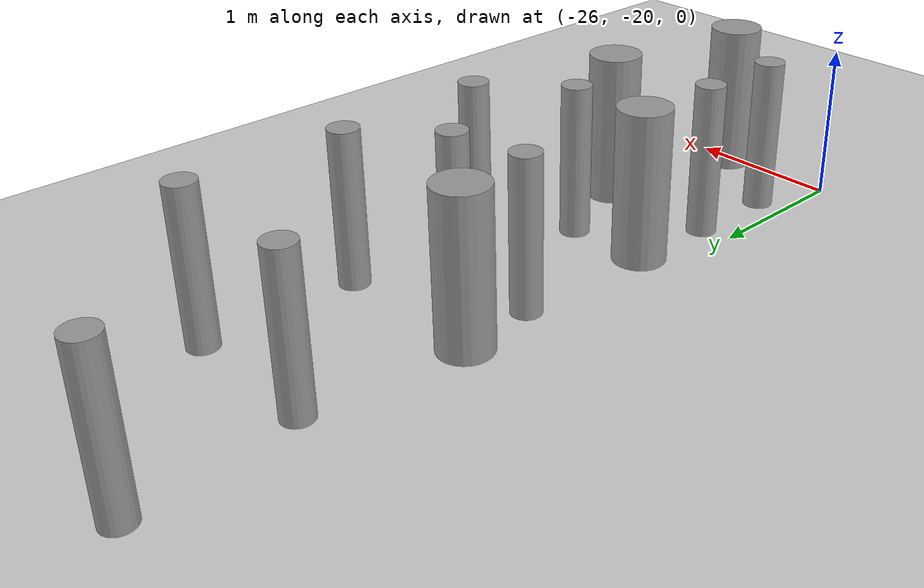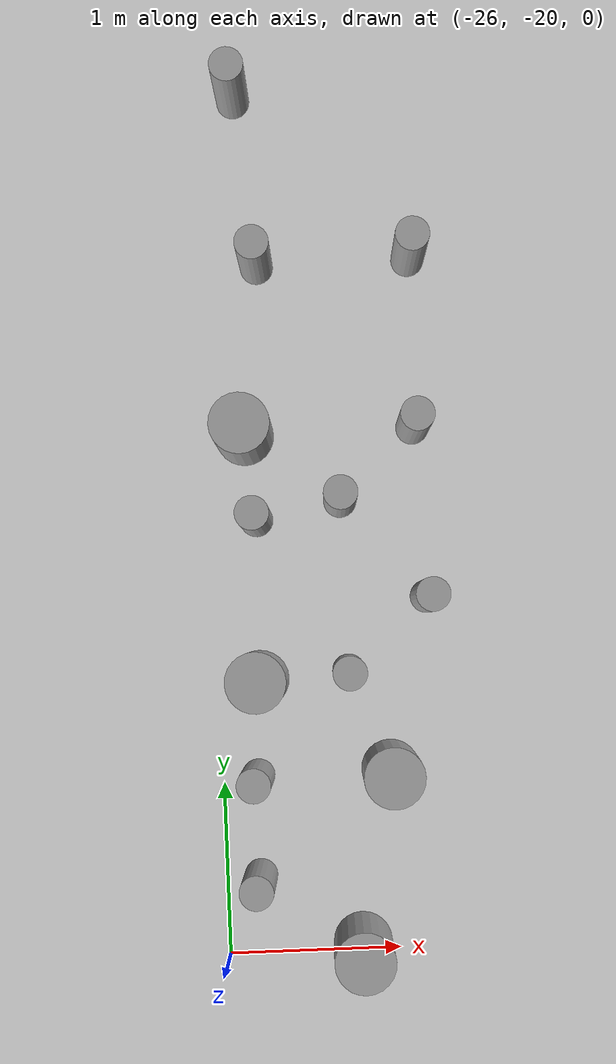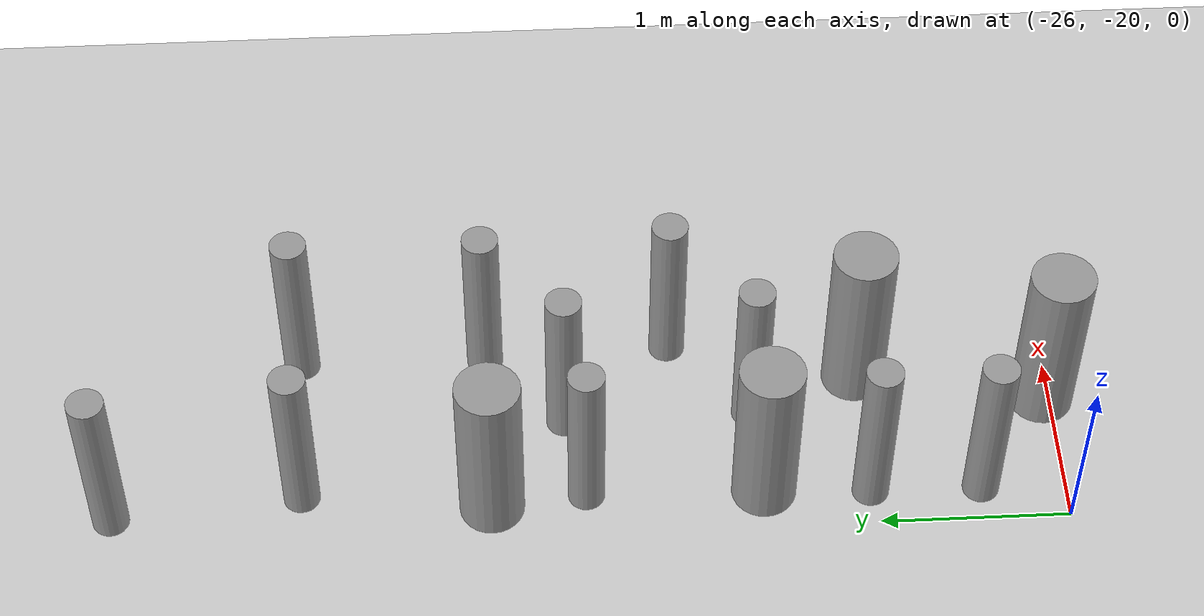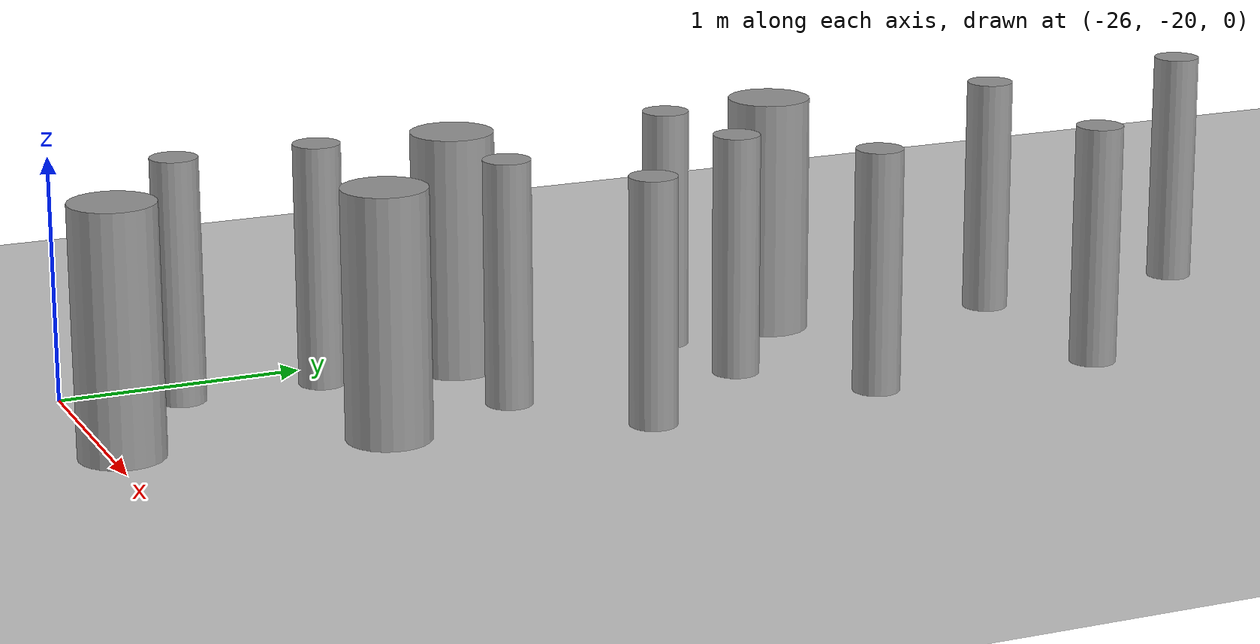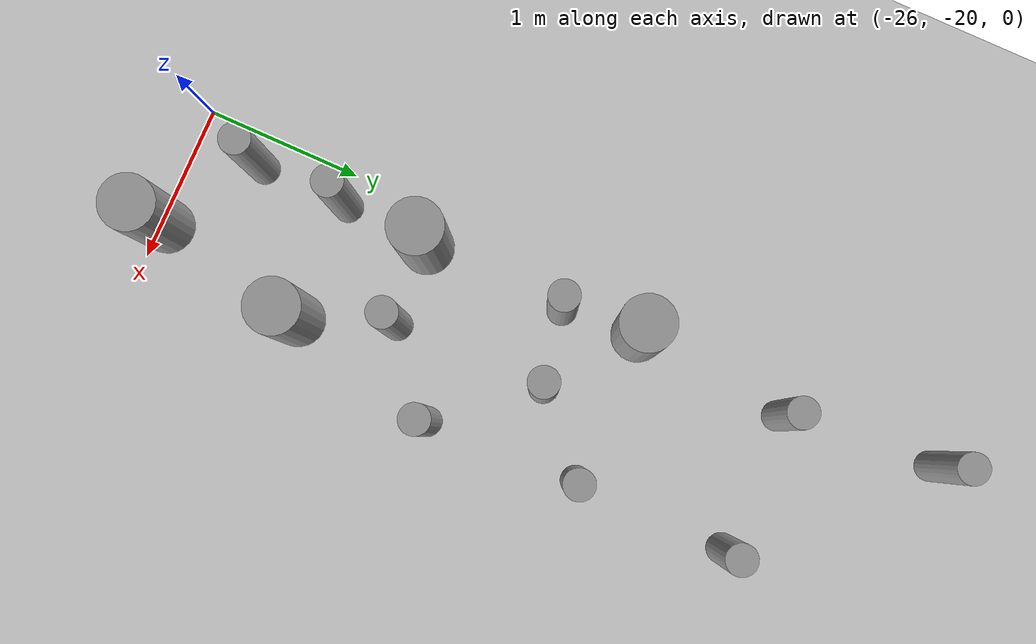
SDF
<sdf version="1.6">
 <world name="default">
  <model name="ground_plane">
   <static>1</static>
   <link name="link">
    <collision name="collision">
     <geometry><plane><normal>0 0 1</normal><size>100 100</size></plane></geometry>
     <surface><friction><ode><mu>100</mu><mu2>50</mu2></ode></friction></surface>
    </collision>
    <visual name="visual">
     <cast_shadows>0</cast_shadows>
     <geometry><plane><normal>0 0 1</normal><size>100 100</size></plane></geometry>
     <material>
      <script><uri>file://media/materials/scripts/gazebo.material</uri><name>Gazebo/Grey</name></script>
     </material>
    </visual>
   </link>
  </model>
  <model name="cyl_wall_clone_clone_1_clone_1_clone_clone_clone_clone_0">
   <link name="link_0">
    <pose>-2.73893 -0.366465 0 0 -0 0</pose>
    <inertial>
     <mass>0.0374993</mass>
     <inertia>
      <ixx>0.00321281</ixx>
      <ixy>0</ixy>
      <ixz>0</ixz>
      <iyy>0.00321281</iyy>
      <iyz>0</iyz>
      <izz>0.000175774</izz>
     </inertia>
    </inertial>
    <visual name="visual">
     <geometry><cylinder><radius>0.0968661</radius><length>1</length></cylinder></geometry>
     <material>
      <lighting>1</lighting>
      <script><uri>file://media/materials/scripts/gazebo.material</uri><name>Gazebo/Grey</name></script>
      <ambient>0.3 0.3 0.3 1</ambient>
      <diffuse>0.7 0.7 0.7 1</diffuse>
      <specular>0.01 0.01 0.01 1</specular>
      <emissive>0 0 0 1</emissive>
     </material>
    </visual>
    <collision name="collision">
     <geometry><cylinder><radius>0.096866</radius><length>1</length></cylinder></geometry>
     <surface>
      <friction>
       <ode><mu>1</mu><mu2>1</mu2><fdir1>0 0 0</fdir1><slip1>0</slip1><slip2>0</slip2></ode>
       <torsional>
        <coefficient>1</coefficient>
        <patch_radius>0</patch_radius>
        <surface_radius>0</surface_radius>
        <use_patch_radius>1</use_patch_radius>
        <ode><slip>0</slip></ode>
       </torsional>
      </friction>
      <bounce><restitution_coefficient>0</restitution_coefficient><threshold>1e+06</threshold></bounce>
      <contact>
       <collide_without_contact>0</collide_without_contact>
       <collide_without_contact_bitmask>1</collide_without_contact_bitmask>
       <collide_bitmask>1</collide_bitmask>
       <ode>
        <soft_cfm>0</soft_cfm>
        <soft_erp>0.2</soft_erp>
        <kp>1e+13</kp>
        <kd>1</kd>
        <max_vel>0.01</max_vel>
        <min_depth>0</min_depth>
       </ode>
       <bullet>
        <split_impulse>1</split_impulse>
        <split_impulse_penetration_threshold>-0.01</split_impulse_penetration_threshold>
        <soft_cfm>0</soft_cfm>
        <soft_erp>0.2</soft_erp>
        <kp>1e+13</kp>
        <kd>1</kd>
       </bullet>
      </contact>
     </surface>
    </collision>
   </link>
   <link name="link_0_clone">
    <pose>-1.73893 0.61877 0 0 -0 0</pose>
    <inertial>
     <mass>0.0374993</mass>
     <inertia>
      <ixx>0.00321281</ixx>
      <ixy>0</ixy>
      <ixz>0</ixz>
      <iyy>0.00321281</iyy>
      <iyz>0</iyz>
      <izz>0.000175774</izz>
     </inertia>
    </inertial>
    <visual name="visual">
     <geometry><cylinder><radius>0.0968661</radius><length>1</length></cylinder></geometry>
     <material>
      <lighting>1</lighting>
      <script><uri>file://media/materials/scripts/gazebo.material</uri><name>Gazebo/Grey</name></script>
      <ambient>0.3 0.3 0.3 1</ambient>
      <diffuse>0.7 0.7 0.7 1</diffuse>
      <specular>0.01 0.01 0.01 1</specular>
      <emissive>0 0 0 1</emissive>
      <shader type="pixel"/>
     </material>
    </visual>
    <collision name="collision">
     <geometry><cylinder><radius>0.096866</radius><length>1</length></cylinder></geometry>
     <surface>
      <friction>
       <ode><mu>1</mu><mu2>1</mu2><fdir1>0 0 0</fdir1><slip1>0</slip1><slip2>0</slip2></ode>
       <torsional>
        <coefficient>1</coefficient>
        <patch_radius>0</patch_radius>
        <surface_radius>0</surface_radius>
        <use_patch_radius>1</use_patch_radius>
        <ode><slip>0</slip></ode>
       </torsional>
      </friction>
      <bounce><restitution_coefficient>0</restitution_coefficient><threshold>1e+06</threshold></bounce>
      <contact>
       <collide_without_contact>0</collide_without_contact>
       <collide_without_contact_bitmask>1</collide_without_contact_bitmask>
       <collide_bitmask>1</collide_bitmask>
       <ode>
        <soft_cfm>0</soft_cfm>
        <soft_erp>0.2</soft_erp>
        <kp>1e+13</kp>
        <kd>1</kd>
        <max_vel>0.01</max_vel>
        <min_depth>0</min_depth>
       </ode>
       <bullet>
        <split_impulse>1</split_impulse>
        <split_impulse_penetration_threshold>-0.01</split_impulse_penetration_threshold>
        <soft_cfm>0</soft_cfm>
        <soft_erp>0.2</soft_erp>
        <kp>1e+13</kp>
        <kd>1</kd>
       </bullet>
      </contact>
     </surface>
    </collision>
   </link>
   <link name="link_0_clone_clone">
    <pose>-0.327073 0.143919 0 0 -0 0</pose>
    <inertial>
     <mass>0.0374993</mass>
     <inertia>
      <ixx>0.00321281</ixx>
      <ixy>0</ixy>
      <ixz>0</ixz>
      <iyy>0.00321281</iyy>
      <iyz>0</iyz>
      <izz>0.000175774</izz>
     </inertia>
    </inertial>
    <visual name="visual">
     <geometry><cylinder><radius>0.0968661</radius><length>1</length></cylinder></geometry>
     <material>
      <lighting>1</lighting>
      <script><uri>file://media/materials/scripts/gazebo.material</uri><name>Gazebo/Grey</name></script>
      <ambient>0.3 0.3 0.3 1</ambient>
      <diffuse>0.7 0.7 0.7 1</diffuse>
      <specular>0.01 0.01 0.01 1</specular>
      <emissive>0 0 0 1</emissive>
      <shader type="pixel"/>
     </material>
    </visual>
    <collision name="collision">
     <geometry><cylinder><radius>0.096866</radius><length>1</length></cylinder></geometry>
     <surface>
      <friction>
       <ode><mu>1</mu><mu2>1</mu2><fdir1>0 0 0</fdir1><slip1>0</slip1><slip2>0</slip2></ode>
       <torsional>
        <coefficient>1</coefficient>
        <patch_radius>0</patch_radius>
        <surface_radius>0</surface_radius>
        <use_patch_radius>1</use_patch_radius>
        <ode><slip>0</slip></ode>
       </torsional>
      </friction>
      <bounce><restitution_coefficient>0</restitution_coefficient><threshold>1e+06</threshold></bounce>
      <contact>
       <collide_without_contact>0</collide_without_contact>
       <collide_without_contact_bitmask>1</collide_without_contact_bitmask>
       <collide_bitmask>1</collide_bitmask>
       <ode>
        <soft_cfm>0</soft_cfm>
        <soft_erp>0.2</soft_erp>
        <kp>1e+13</kp>
        <kd>1</kd>
        <max_vel>0.01</max_vel>
        <min_depth>0</min_depth>
       </ode>
       <bullet>
        <split_impulse>1</split_impulse>
        <split_impulse_penetration_threshold>-0.01</split_impulse_penetration_threshold>
        <soft_cfm>0</soft_cfm>
        <soft_erp>0.2</soft_erp>
        <kp>1e+13</kp>
        <kd>1</kd>
       </bullet>
      </contact>
     </surface>
    </collision>
   </link>
   <link name="link_0_clone_clone_0">
    <pose>1.26107 -0.419359 0 0 -0 0</pose>
    <inertial>
     <mass>0.0374993</mass>
     <inertia>
      <ixx>0.00321281</ixx>
      <ixy>0</ixy>
      <ixz>0</ixz>
      <iyy>0.00321281</iyy>
      <iyz>0</iyz>
      <izz>0.000175774</izz>
     </inertia>
    </inertial>
    <visual name="visual">
     <geometry><cylinder><radius>0.0968661</radius><length>1</length></cylinder></geometry>
     <material>
      <lighting>1</lighting>
      <script><uri>file://media/materials/scripts/gazebo.material</uri><name>Gazebo/Grey</name></script>
      <ambient>0.3 0.3 0.3 1</ambient>
      <diffuse>0.7 0.7 0.7 1</diffuse>
      <specular>0.01 0.01 0.01 1</specular>
      <emissive>0 0 0 1</emissive>
      <shader type="pixel"/>
     </material>
    </visual>
    <collision name="collision">
     <geometry><cylinder><radius>0.096866</radius><length>1</length></cylinder></geometry>
     <surface>
      <friction>
       <ode><mu>1</mu><mu2>1</mu2><fdir1>0 0 0</fdir1><slip1>0</slip1><slip2>0</slip2></ode>
       <torsional>
        <coefficient>1</coefficient>
        <patch_radius>0</patch_radius>
        <surface_radius>0</surface_radius>
        <use_patch_radius>1</use_patch_radius>
        <ode><slip>0</slip></ode>
       </torsional>
      </friction>
      <bounce><restitution_coefficient>0</restitution_coefficient><threshold>1e+06</threshold></bounce>
      <contact>
       <collide_without_contact>0</collide_without_contact>
       <collide_without_contact_bitmask>1</collide_without_contact_bitmask>
       <collide_bitmask>1</collide_bitmask>
       <ode>
        <soft_cfm>0</soft_cfm>
        <soft_erp>0.2</soft_erp>
        <kp>1e+13</kp>
        <kd>1</kd>
        <max_vel>0.01</max_vel>
        <min_depth>0</min_depth>
       </ode>
       <bullet>
        <split_impulse>1</split_impulse>
        <split_impulse_penetration_threshold>-0.01</split_impulse_penetration_threshold>
        <soft_cfm>0</soft_cfm>
        <soft_erp>0.2</soft_erp>
        <kp>1e+13</kp>
        <kd>1</kd>
       </bullet>
      </contact>
     </surface>
    </collision>
   </link>
   <link name="link_0_clone_clone_1">
    <pose>-1.73893 -0.277168 0 0 -0 0</pose>
    <inertial>
     <mass>0.0374993</mass>
     <inertia>
      <ixx>0.00321281</ixx>
      <ixy>0</ixy>
      <ixz>0</ixz>
      <iyy>0.00321281</iyy>
      <iyz>0</iyz>
      <izz>0.000175774</izz>
     </inertia>
    </inertial>
    <visual name="visual">
     <geometry><cylinder><radius>0.0968661</radius><length>1</length></cylinder></geometry>
     <material>
      <lighting>1</lighting>
      <script><uri>file://media/materials/scripts/gazebo.material</uri><name>Gazebo/Grey</name></script>
      <ambient>0.3 0.3 0.3 1</ambient>
      <diffuse>0.7 0.7 0.7 1</diffuse>
      <specular>0.01 0.01 0.01 1</specular>
      <emissive>0 0 0 1</emissive>
      <shader type="pixel"/>
     </material>
    </visual>
    <collision name="collision">
     <geometry><cylinder><radius>0.096866</radius><length>1</length></cylinder></geometry>
     <surface>
      <friction>
       <ode><mu>1</mu><mu2>1</mu2><fdir1>0 0 0</fdir1><slip1>0</slip1><slip2>0</slip2></ode>
       <torsional>
        <coefficient>1</coefficient>
        <patch_radius>0</patch_radius>
        <surface_radius>0</surface_radius>
        <use_patch_radius>1</use_patch_radius>
        <ode><slip>0</slip></ode>
       </torsional>
      </friction>
      <bounce><restitution_coefficient>0</restitution_coefficient><threshold>1e+06</threshold></bounce>
      <contact>
       <collide_without_contact>0</collide_without_contact>
       <collide_without_contact_bitmask>1</collide_without_contact_bitmask>
       <collide_bitmask>1</collide_bitmask>
       <ode>
        <soft_cfm>0</soft_cfm>
        <soft_erp>0.2</soft_erp>
        <kp>1e+13</kp>
        <kd>1</kd>
        <max_vel>0.01</max_vel>
        <min_depth>0</min_depth>
       </ode>
       <bullet>
        <split_impulse>1</split_impulse>
        <split_impulse_penetration_threshold>-0.01</split_impulse_penetration_threshold>
        <soft_cfm>0</soft_cfm>
        <soft_erp>0.2</soft_erp>
        <kp>1e+13</kp>
        <kd>1</kd>
       </bullet>
      </contact>
     </surface>
    </collision>
   </link>
   <link name="link_0_clone_clone_2">
    <pose>-0.738934 0.593961 0 0 -0 0</pose>
    <inertial>
     <mass>0.0374993</mass>
     <inertia>
      <ixx>0.00321281</ixx>
      <ixy>0</ixy>
      <ixz>0</ixz>
      <iyy>0.00321281</iyy>
      <iyz>0</iyz>
      <izz>0.000175774</izz>
     </inertia>
    </inertial>
    <visual name="visual">
     <geometry><cylinder><radius>0.0968661</radius><length>1</length></cylinder></geometry>
     <material>
      <lighting>1</lighting>
      <script><uri>file://media/materials/scripts/gazebo.material</uri><name>Gazebo/Grey</name></script>
      <ambient>0.3 0.3 0.3 1</ambient>
      <diffuse>0.7 0.7 0.7 1</diffuse>
      <specular>0.01 0.01 0.01 1</specular>
      <emissive>0 0 0 1</emissive>
      <shader type="pixel"/>
     </material>
    </visual>
    <collision name="collision">
     <geometry><cylinder><radius>0.096866</radius><length>1</length></cylinder></geometry>
     <surface>
      <friction>
       <ode><mu>1</mu><mu2>1</mu2><fdir1>0 0 0</fdir1><slip1>0</slip1><slip2>0</slip2></ode>
       <torsional>
        <coefficient>1</coefficient>
        <patch_radius>0</patch_radius>
        <surface_radius>0</surface_radius>
        <use_patch_radius>1</use_patch_radius>
        <ode><slip>0</slip></ode>
       </torsional>
      </friction>
      <bounce><restitution_coefficient>0</restitution_coefficient><threshold>1e+06</threshold></bounce>
      <contact>
       <collide_without_contact>0</collide_without_contact>
       <collide_without_contact_bitmask>1</collide_without_contact_bitmask>
       <collide_bitmask>1</collide_bitmask>
       <ode>
        <soft_cfm>0</soft_cfm>
        <soft_erp>0.2</soft_erp>
        <kp>1e+13</kp>
        <kd>1</kd>
        <max_vel>0.01</max_vel>
        <min_depth>0</min_depth>
       </ode>
       <bullet>
        <split_impulse>1</split_impulse>
        <split_impulse_penetration_threshold>-0.01</split_impulse_penetration_threshold>
        <soft_cfm>0</soft_cfm>
        <soft_erp>0.2</soft_erp>
        <kp>1e+13</kp>
        <kd>1</kd>
       </bullet>
      </contact>
     </surface>
    </collision>
   </link>
   <link name="link_0_clone_clone_3">
    <pose>0.261066 0.624849 0 0 -0 0</pose>
    <inertial>
     <mass>0.0374993</mass>
     <inertia>
      <ixx>0.00321281</ixx>
      <ixy>0</ixy>
      <ixz>0</ixz>
      <iyy>0.00321281</iyy>
      <iyz>0</iyz>
      <izz>0.000175774</izz>
     </inertia>
    </inertial>
    <visual name="visual">
     <geometry><cylinder><radius>0.0968661</radius><length>1</length></cylinder></geometry>
     <material>
      <lighting>1</lighting>
      <script><uri>file://media/materials/scripts/gazebo.material</uri><name>Gazebo/Grey</name></script>
      <ambient>0.3 0.3 0.3 1</ambient>
      <diffuse>0.7 0.7 0.7 1</diffuse>
      <specular>0.01 0.01 0.01 1</specular>
      <emissive>0 0 0 1</emissive>
      <shader type="pixel"/>
     </material>
    </visual>
    <collision name="collision">
     <geometry><cylinder><radius>0.096866</radius><length>1</length></cylinder></geometry>
     <surface>
      <friction>
       <ode><mu>1</mu><mu2>1</mu2><fdir1>0 0 0</fdir1><slip1>0</slip1><slip2>0</slip2></ode>
       <torsional>
        <coefficient>1</coefficient>
        <patch_radius>0</patch_radius>
        <surface_radius>0</surface_radius>
        <use_patch_radius>1</use_patch_radius>
        <ode><slip>0</slip></ode>
       </torsional>
      </friction>
      <bounce><restitution_coefficient>0</restitution_coefficient><threshold>1e+06</threshold></bounce>
      <contact>
       <collide_without_contact>0</collide_without_contact>
       <collide_without_contact_bitmask>1</collide_without_contact_bitmask>
       <collide_bitmask>1</collide_bitmask>
       <ode>
        <soft_cfm>0</soft_cfm>
        <soft_erp>0.2</soft_erp>
        <kp>1e+13</kp>
        <kd>1</kd>
        <max_vel>0.01</max_vel>
        <min_depth>0</min_depth>
       </ode>
       <bullet>
        <split_impulse>1</split_impulse>
        <split_impulse_penetration_threshold>-0.01</split_impulse_penetration_threshold>
        <soft_cfm>0</soft_cfm>
        <soft_erp>0.2</soft_erp>
        <kp>1e+13</kp>
        <kd>1</kd>
       </bullet>
      </contact>
     </surface>
    </collision>
   </link>
   <link name="link_0_clone_clone_4">
    <pose>-0.239049 -0.353105 0 0 -0 0</pose>
    <inertial>
     <mass>0.0374993</mass>
     <inertia>
      <ixx>0.00321281</ixx>
      <ixy>0</ixy>
      <ixz>0</ixz>
      <iyy>0.00321281</iyy>
      <iyz>0</iyz>
      <izz>0.000175774</izz>
     </inertia>
    </inertial>
    <visual name="visual">
     <geometry><cylinder><radius>0.0968661</radius><length>1</length></cylinder></geometry>
     <material>
      <lighting>1</lighting>
      <script><uri>file://media/materials/scripts/gazebo.material</uri><name>Gazebo/Grey</name></script>
      <ambient>0.3 0.3 0.3 1</ambient>
      <diffuse>0.7 0.7 0.7 1</diffuse>
      <specular>0.01 0.01 0.01 1</specular>
      <emissive>0 0 0 1</emissive>
      <shader type="pixel"/>
     </material>
    </visual>
    <collision name="collision">
     <geometry><cylinder><radius>0.096866</radius><length>1</length></cylinder></geometry>
     <surface>
      <friction>
       <ode><mu>1</mu><mu2>1</mu2><fdir1>0 0 0</fdir1><slip1>0</slip1><slip2>0</slip2></ode>
       <torsional>
        <coefficient>1</coefficient>
        <patch_radius>0</patch_radius>
        <surface_radius>0</surface_radius>
        <use_patch_radius>1</use_patch_radius>
        <ode><slip>0</slip></ode>
       </torsional>
      </friction>
      <bounce><restitution_coefficient>0</restitution_coefficient><threshold>1e+06</threshold></bounce>
      <contact>
       <collide_without_contact>0</collide_without_contact>
       <collide_without_contact_bitmask>1</collide_without_contact_bitmask>
       <collide_bitmask>1</collide_bitmask>
       <ode>
        <soft_cfm>0</soft_cfm>
        <soft_erp>0.2</soft_erp>
        <kp>1e+13</kp>
        <kd>1</kd>
        <max_vel>0.01</max_vel>
        <min_depth>0</min_depth>
       </ode>
       <bullet>
        <split_impulse>1</split_impulse>
        <split_impulse_penetration_threshold>-0.01</split_impulse_penetration_threshold>
        <soft_cfm>0</soft_cfm>
        <soft_erp>0.2</soft_erp>
        <kp>1e+13</kp>
        <kd>1</kd>
       </bullet>
      </contact>
     </surface>
    </collision>
   </link>
   <link name="link_0_clone_clone_5">
    <pose>0.672792 0.143919 0 0 -0 0</pose>
    <inertial>
     <mass>0.0374993</mass>
     <inertia>
      <ixx>0.00321281</ixx>
      <ixy>0</ixy>
      <ixz>0</ixz>
      <iyy>0.00321281</iyy>
      <iyz>0</iyz>
      <izz>0.000175774</izz>
     </inertia>
    </inertial>
    <visual name="visual">
     <geometry><cylinder><radius>0.0968661</radius><length>1</length></cylinder></geometry>
     <material>
      <lighting>1</lighting>
      <script><uri>file://media/materials/scripts/gazebo.material</uri><name>Gazebo/Grey</name></script>
      <ambient>0.3 0.3 0.3 1</ambient>
      <diffuse>0.7 0.7 0.7 1</diffuse>
      <specular>0.01 0.01 0.01 1</specular>
      <emissive>0 0 0 1</emissive>
      <shader type="pixel"/>
     </material>
    </visual>
    <collision name="collision">
     <geometry><cylinder><radius>0.096866</radius><length>1</length></cylinder></geometry>
     <surface>
      <friction>
       <ode><mu>1</mu><mu2>1</mu2><fdir1>0 0 0</fdir1><slip1>0</slip1><slip2>0</slip2></ode>
       <torsional>
        <coefficient>1</coefficient>
        <patch_radius>0</patch_radius>
        <surface_radius>0</surface_radius>
        <use_patch_radius>1</use_patch_radius>
        <ode><slip>0</slip></ode>
       </torsional>
      </friction>
      <bounce><restitution_coefficient>0</restitution_coefficient><threshold>1e+06</threshold></bounce>
      <contact>
       <collide_without_contact>0</collide_without_contact>
       <collide_without_contact_bitmask>1</collide_without_contact_bitmask>
       <collide_bitmask>1</collide_bitmask>
       <ode>
        <soft_cfm>0</soft_cfm>
        <soft_erp>0.2</soft_erp>
        <kp>1e+13</kp>
        <kd>1</kd>
        <max_vel>0.01</max_vel>
        <min_depth>0</min_depth>
       </ode>
       <bullet>
        <split_impulse>1</split_impulse>
        <split_impulse_penetration_threshold>-0.01</split_impulse_penetration_threshold>
        <soft_cfm>0</soft_cfm>
        <soft_erp>0.2</soft_erp>
        <kp>1e+13</kp>
        <kd>1</kd>
       </bullet>
      </contact>
     </surface>
    </collision>
   </link>
   <link name="link_0_clone_clone_6">
    <pose>1.84596 -0.433423 0 0 -0 0</pose>
    <inertial>
     <mass>0.0374993</mass>
     <inertia>
      <ixx>0.00321281</ixx>
      <ixy>0</ixy>
      <ixz>0</ixz>
      <iyy>0.00321281</iyy>
      <iyz>0</iyz>
      <izz>0.000175774</izz>
     </inertia>
    </inertial>
    <visual name="visual">
     <geometry><cylinder><radius>0.0968661</radius><length>1</length></cylinder></geometry>
     <material>
      <lighting>1</lighting>
      <script><uri>file://media/materials/scripts/gazebo.material</uri><name>Gazebo/Grey</name></script>
      <ambient>0.3 0.3 0.3 1</ambient>
      <diffuse>0.7 0.7 0.7 1</diffuse>
      <specular>0.01 0.01 0.01 1</specular>
      <emissive>0 0 0 1</emissive>
      <shader type="pixel"/>
     </material>
    </visual>
    <collision name="collision">
     <geometry><cylinder><radius>0.096866</radius><length>1</length></cylinder></geometry>
     <surface>
      <friction>
       <ode><mu>1</mu><mu2>1</mu2><fdir1>0 0 0</fdir1><slip1>0</slip1><slip2>0</slip2></ode>
       <torsional>
        <coefficient>1</coefficient>
        <patch_radius>0</patch_radius>
        <surface_radius>0</surface_radius>
        <use_patch_radius>1</use_patch_radius>
        <ode><slip>0</slip></ode>
       </torsional>
      </friction>
      <bounce><restitution_coefficient>0</restitution_coefficient><threshold>1e+06</threshold></bounce>
      <contact>
       <collide_without_contact>0</collide_without_contact>
       <collide_without_contact_bitmask>1</collide_without_contact_bitmask>
       <collide_bitmask>1</collide_bitmask>
       <ode>
        <soft_cfm>0</soft_cfm>
        <soft_erp>0.2</soft_erp>
        <kp>1e+13</kp>
        <kd>1</kd>
        <max_vel>0.01</max_vel>
        <min_depth>0</min_depth>
       </ode>
       <bullet>
        <split_impulse>1</split_impulse>
        <split_impulse_penetration_threshold>-0.01</split_impulse_penetration_threshold>
        <soft_cfm>0</soft_cfm>
        <soft_erp>0.2</soft_erp>
        <kp>1e+13</kp>
        <kd>1</kd>
       </bullet>
      </contact>
     </surface>
    </collision>
   </link>
   <link name="link_1">
    <pose>-0.738934 -0.397931 0 0 -0 0</pose>
    <inertial>
     <mass>0.117398</mass>
     <inertia>
      <ixx>0.0106445</ixx>
      <ixy>0</ixy>
      <ixz>0</ixz>
      <iyy>0.0106445</iyy>
      <iyz>0</iyz>
      <izz>0.00172278</izz>
     </inertia>
    </inertial>
    <visual name="visual">
     <geometry><cylinder><radius>0.171317</radius><length>1</length></cylinder></geometry>
     <material>
      <lighting>1</lighting>
      <script><uri>file://media/materials/scripts/gazebo.material</uri><name>Gazebo/Grey</name></script>
      <ambient>0.3 0.3 0.3 1</ambient>
      <diffuse>0.7 0.7 0.7 1</diffuse>
      <specular>0.01 0.01 0.01 1</specular>
      <emissive>0 0 0 1</emissive>
     </material>
    </visual>
    <collision name="collision">
     <geometry><cylinder><radius>0.171317</radius><length>1</length></cylinder></geometry>
     <surface>
      <friction>
       <ode><mu>1</mu><mu2>1</mu2><fdir1>0 0 0</fdir1><slip1>0</slip1><slip2>0</slip2></ode>
       <torsional>
        <coefficient>1</coefficient>
        <patch_radius>0</patch_radius>
        <surface_radius>0</surface_radius>
        <use_patch_radius>1</use_patch_radius>
        <ode><slip>0</slip></ode>
       </torsional>
      </friction>
      <bounce><restitution_coefficient>0</restitution_coefficient><threshold>1e+06</threshold></bounce>
      <contact>
       <collide_without_contact>0</collide_without_contact>
       <collide_without_contact_bitmask>1</collide_without_contact_bitmask>
       <collide_bitmask>1</collide_bitmask>
       <ode>
        <soft_cfm>0</soft_cfm>
        <soft_erp>0.2</soft_erp>
        <kp>1e+13</kp>
        <kd>1</kd>
        <max_vel>0.01</max_vel>
        <min_depth>0</min_depth>
       </ode>
       <bullet>
        <split_impulse>1</split_impulse>
        <split_impulse_penetration_threshold>-0.01</split_impulse_penetration_threshold>
        <soft_cfm>0</soft_cfm>
        <soft_erp>0.2</soft_erp>
        <kp>1e+13</kp>
        <kd>1</kd>
       </bullet>
      </contact>
     </surface>
    </collision>
   </link>
   <link name="link_1_clone">
    <pose>0.697784 -0.380861 0 0 -0 0</pose>
    <inertial>
     <mass>0.117398</mass>
     <inertia>
      <ixx>0.0106445</ixx>
      <ixy>0</ixy>
      <ixz>0</ixz>
      <iyy>0.0106445</iyy>
      <iyz>0</iyz>
      <izz>0.00172278</izz>
     </inertia>
    </inertial>
    <visual name="visual">
     <geometry><cylinder><radius>0.171317</radius><length>1</length></cylinder></geometry>
     <material>
      <lighting>1</lighting>
      <script><uri>file://media/materials/scripts/gazebo.material</uri><name>Gazebo/Grey</name></script>
      <ambient>0.3 0.3 0.3 1</ambient>
      <diffuse>0.7 0.7 0.7 1</diffuse>
      <specular>0.01 0.01 0.01 1</specular>
      <emissive>0 0 0 1</emissive>
      <shader type="pixel"/>
     </material>
    </visual>
    <collision name="collision">
     <geometry><cylinder><radius>0.171317</radius><length>1</length></cylinder></geometry>
     <surface>
      <friction>
       <ode><mu>1</mu><mu2>1</mu2><fdir1>0 0 0</fdir1><slip1>0</slip1><slip2>0</slip2></ode>
       <torsional>
        <coefficient>1</coefficient>
        <patch_radius>0</patch_radius>
        <surface_radius>0</surface_radius>
        <use_patch_radius>1</use_patch_radius>
        <ode><slip>0</slip></ode>
       </torsional>
      </friction>
      <bounce><restitution_coefficient>0</restitution_coefficient><threshold>1e+06</threshold></bounce>
      <contact>
       <collide_without_contact>0</collide_without_contact>
       <collide_without_contact_bitmask>1</collide_without_contact_bitmask>
       <collide_bitmask>1</collide_bitmask>
       <ode>
        <soft_cfm>0</soft_cfm>
        <soft_erp>0.2</soft_erp>
        <kp>1e+13</kp>
        <kd>1</kd>
        <max_vel>0.01</max_vel>
        <min_depth>0</min_depth>
       </ode>
       <bullet>
        <split_impulse>1</split_impulse>
        <split_impulse_penetration_threshold>-0.01</split_impulse_penetration_threshold>
        <soft_cfm>0</soft_cfm>
        <soft_erp>0.2</soft_erp>
        <kp>1e+13</kp>
        <kd>1</kd>
       </bullet>
      </contact>
     </surface>
    </collision>
   </link>
   <link name="link_1_clone_0">
    <pose>1.26107 0.358974 0 0 -0 0</pose>
    <inertial>
     <mass>0.117398</mass>
     <inertia>
      <ixx>0.0106445</ixx>
      <ixy>0</ixy>
      <ixz>0</ixz>
      <iyy>0.0106445</iyy>
      <iyz>0</iyz>
      <izz>0.00172278</izz>
     </inertia>
    </inertial>
    <visual name="visual">
     <geometry><cylinder><radius>0.171317</radius><length>1</length></cylinder></geometry>
     <material>
      <lighting>1</lighting>
      <script><uri>file://media/materials/scripts/gazebo.material</uri><name>Gazebo/Grey</name></script>
      <ambient>0.3 0.3 0.3 1</ambient>
      <diffuse>0.7 0.7 0.7 1</diffuse>
      <specular>0.01 0.01 0.01 1</specular>
      <emissive>0 0 0 1</emissive>
      <shader type="pixel"/>
     </material>
    </visual>
    <collision name="collision">
     <geometry><cylinder><radius>0.171317</radius><length>1</length></cylinder></geometry>
     <surface>
      <friction>
       <ode><mu>1</mu><mu2>1</mu2><fdir1>0 0 0</fdir1><slip1>0</slip1><slip2>0</slip2></ode>
       <torsional>
        <coefficient>1</coefficient>
        <patch_radius>0</patch_radius>
        <surface_radius>0</surface_radius>
        <use_patch_radius>1</use_patch_radius>
        <ode><slip>0</slip></ode>
       </torsional>
      </friction>
      <bounce><restitution_coefficient>0</restitution_coefficient><threshold>1e+06</threshold></bounce>
      <contact>
       <collide_without_contact>0</collide_without_contact>
       <collide_without_contact_bitmask>1</collide_without_contact_bitmask>
       <collide_bitmask>1</collide_bitmask>
       <ode>
        <soft_cfm>0</soft_cfm>
        <soft_erp>0.2</soft_erp>
        <kp>1e+13</kp>
        <kd>1</kd>
        <max_vel>0.01</max_vel>
        <min_depth>0</min_depth>
       </ode>
       <bullet>
        <split_impulse>1</split_impulse>
        <split_impulse_penetration_threshold>-0.01</split_impulse_penetration_threshold>
        <soft_cfm>0</soft_cfm>
        <soft_erp>0.2</soft_erp>
        <kp>1e+13</kp>
        <kd>1</kd>
       </bullet>
      </contact>
     </surface>
    </collision>
   </link>
   <link name="link_1_clone_1">
    <pose>2.26107 0.143919 0 0 -0 0</pose>
    <inertial>
     <mass>0.117398</mass>
     <inertia>
      <ixx>0.0106445</ixx>
      <ixy>0</ixy>
      <ixz>0</ixz>
      <iyy>0.0106445</iyy>
      <iyz>0</iyz>
      <izz>0.00172278</izz>
     </inertia>
    </inertial>
    <visual name="visual">
     <geometry><cylinder><radius>0.171317</radius><length>1</length></cylinder></geometry>
     <material>
      <lighting>1</lighting>
      <script><uri>file://media/materials/scripts/gazebo.material</uri><name>Gazebo/Grey</name></script>
      <ambient>0.3 0.3 0.3 1</ambient>
      <diffuse>0.7 0.7 0.7 1</diffuse>
      <specular>0.01 0.01 0.01 1</specular>
      <emissive>0 0 0 1</emissive>
      <shader type="pixel"/>
     </material>
    </visual>
    <collision name="collision">
     <geometry><cylinder><radius>0.171317</radius><length>1</length></cylinder></geometry>
     <surface>
      <friction>
       <ode><mu>1</mu><mu2>1</mu2><fdir1>0 0 0</fdir1><slip1>0</slip1><slip2>0</slip2></ode>
       <torsional>
        <coefficient>1</coefficient>
        <patch_radius>0</patch_radius>
        <surface_radius>0</surface_radius>
        <use_patch_radius>1</use_patch_radius>
        <ode><slip>0</slip></ode>
       </torsional>
      </friction>
      <bounce><restitution_coefficient>0</restitution_coefficient><threshold>1e+06</threshold></bounce>
      <contact>
       <collide_without_contact>0</collide_without_contact>
       <collide_without_contact_bitmask>1</collide_without_contact_bitmask>
       <collide_bitmask>1</collide_bitmask>
       <ode>
        <soft_cfm>0</soft_cfm>
        <soft_erp>0.2</soft_erp>
        <kp>1e+13</kp>
        <kd>1</kd>
        <max_vel>0.01</max_vel>
        <min_depth>0</min_depth>
       </ode>
       <bullet>
        <split_impulse>1</split_impulse>
        <split_impulse_penetration_threshold>-0.01</split_impulse_penetration_threshold>
        <soft_cfm>0</soft_cfm>
        <soft_erp>0.2</soft_erp>
        <kp>1e+13</kp>
        <kd>1</kd>
       </bullet>
      </contact>
     </surface>
    </collision>
   </link>
   <static>1</static>
   <pose>-25.3952 -17.6959 0.5 0 0 -1.55814</pose>
  </model>
 </world>
</sdf>
